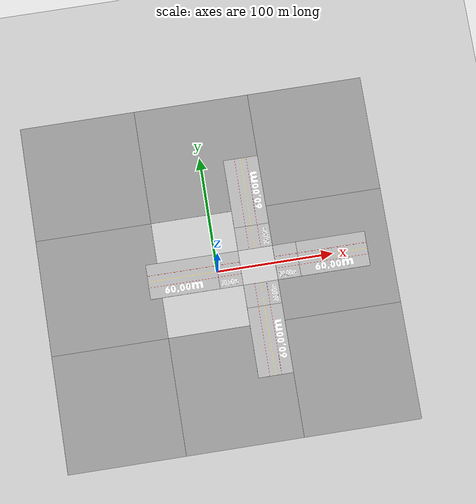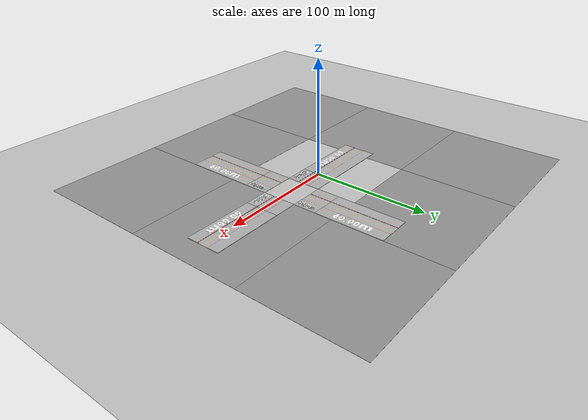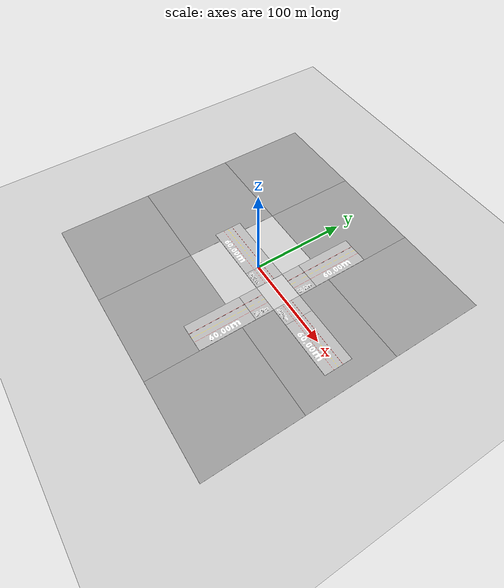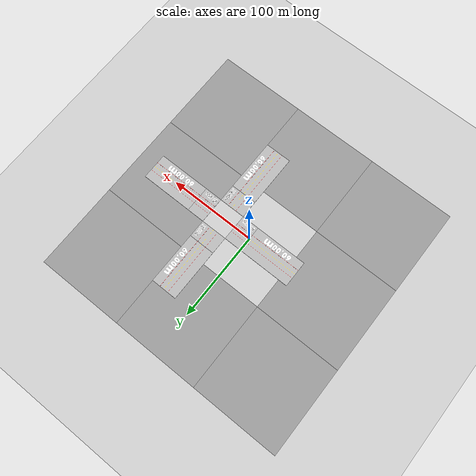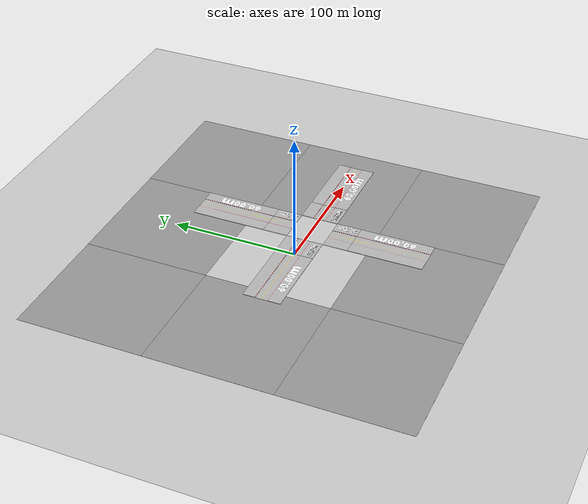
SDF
<sdf version="1.6">
 <world name="my_world">
  <light name="sun" type="directional">
   <pose>0 0 10 0 -0 0</pose>
   <diffuse>0.8 0.8 0.8 1</diffuse>
   <specular>0.2 0.2 0.2 1</specular>
   <attenuation>
    <range>1000</range>
    <constant>0.9</constant>
    <linear>0.01</linear>
    <quadratic>0.001</quadratic>
   </attenuation>
   <direction>-0.5 0.1 -0.9</direction>
  </light>
  <plugin name="ros_interface_plugin" filename="librotors_gazebo_ros_interface_plugin.so"/>
  <gravity>0 0 -9.8</gravity>
  <magnetic_field>6e-06 2.3e-05 -4.2e-05</magnetic_field>
  <atmosphere type="adiabatic"/>
  <physics name="default_physics" default="0" type="ode">
   <ode>
    <solver>
     <type>quick</type>
     <iters>500</iters>
     <sor>1.3</sor>
     <use_dynamic_moi_rescaling>0</use_dynamic_moi_rescaling>
    </solver>
    <constraints>
     <cfm>0</cfm>
     <erp>0.2</erp>
     <contact_max_correcting_vel>100</contact_max_correcting_vel>
     <contact_surface_layer>0.001</contact_surface_layer>
    </constraints>
   </ode>
   <max_step_size>0.01</max_step_size>
   <real_time_factor>1</real_time_factor>
   <real_time_update_rate>100</real_time_update_rate>
  </physics>
  <scene><ambient>0.4 0.4 0.4 1</ambient><background>0.7 0.7 0.7 1</background><shadows>1</shadows></scene>
  <spherical_coordinates>
   <surface_model>EARTH_WGS84</surface_model>
   <latitude_deg>0</latitude_deg>
   <longitude_deg>0</longitude_deg>
   <elevation>0</elevation>
   <heading_deg>0</heading_deg>
  </spherical_coordinates>
  <model name="ground_plane">
   <static>1</static>
   <link name="link">
    <collision name="collision">
     <geometry><plane><normal>0 0 1</normal><size>100 100</size></plane></geometry>
     <surface><friction><ode><mu>100</mu><mu2>50</mu2></ode></friction></surface>
    </collision>
    <visual name="visual">
     <cast_shadows>0</cast_shadows>
     <geometry><plane><normal>0 0 1</normal><size>100 100</size></plane></geometry>
     <material>
      <script><uri>file://media/materials/scripts/gazebo.material</uri><name>Gazebo/Grey</name></script>
     </material>
    </visual>
   </link>
  </model>
  <model name="recta20,00m">
   <static>1</static>
   <link name="recta20,00m_link">
    <collision name="recta20,00m_collision">
     <pose>5 10 0.1 0 -0 0</pose>
     <geometry><box><size>30 20 0.2</size></box></geometry>
    </collision>
    <visual name="recta20,00m_mesh">
     <geometry><mesh><uri>model://recta20,00m/meshes/recta20,00m.dae</uri></mesh></geometry>
    </visual>
   </link>
   <pose>0 5 0 0 0 -1.5708</pose>
  </model>
  <model name="recta20,00m_0">
   <static>1</static>
   <link name="recta20,00m_link">
    <collision name="recta20,00m_collision">
     <pose>5 10 0.1 0 -0 0</pose>
     <geometry><box><size>30 20 0.2</size></box></geometry>
    </collision>
    <visual name="recta20,00m_mesh">
     <cast_shadows>0</cast_shadows>
     <geometry><mesh><uri>model://recta20,00m/meshes/recta20,00m.dae</uri></mesh></geometry>
    </visual>
   </link>
   <pose>30 15 0 0 -0 0</pose>
  </model>
  <model name="recta20,00m_1">
   <static>1</static>
   <link name="recta20,00m_link">
    <collision name="recta20,00m_collision">
     <pose>5 10 0.1 0 -0 0</pose>
     <geometry><box><size>30 20 0.2</size></box></geometry>
    </collision>
    <visual name="recta20,00m_mesh">
     <cast_shadows>0</cast_shadows>
     <geometry><mesh><uri>model://recta20,00m/meshes/recta20,00m.dae</uri></mesh></geometry>
    </visual>
   </link>
   <pose>30 -35 0 0 -0 0</pose>
  </model>
  <model name="recta20,00m_2">
   <static>1</static>
   <link name="recta20,00m_link">
    <collision name="recta20,00m_collision">
     <pose>5 10 0.1 0 -0 0</pose>
     <geometry><box><size>30 20 0.2</size></box></geometry>
    </collision>
    <visual name="recta20,00m_mesh">
     <cast_shadows>0</cast_shadows>
     <geometry><mesh><uri>model://recta20,00m/meshes/recta20,00m.dae</uri></mesh></geometry>
    </visual>
   </link>
   <pose>50 5 0 0 0 -1.5708</pose>
  </model>
  <model name="rectasinpeaton60,00m">
   <static>1</static>
   <link name="rectasinpeaton60,00m_link">
    <collision name="rectasinpeaton60,00m_collision">
     <pose>15 30 0.1 0 -0 0</pose>
     <geometry><box><size>30 60 0.2</size></box></geometry>
    </collision>
    <visual name="rectasinpeaton60,00m_mesh">
     <cast_shadows>0</cast_shadows>
     <geometry><mesh><uri>model://rectasinpeaton60,00m/meshes/rectasinpeaton60,00m.dae</uri></mesh></geometry>
    </visual>
   </link>
   <pose>-60 15 0 0 0 -1.5708</pose>
  </model>
  <model name="rectasinpeaton60,00m_0">
   <static>1</static>
   <link name="rectasinpeaton60,00m_link">
    <collision name="rectasinpeaton60,00m_collision">
     <pose>15 30 0.1 0 -0 0</pose>
     <geometry><box><size>30 60 0.2</size></box></geometry>
    </collision>
    <visual name="rectasinpeaton60,00m_mesh">
     <cast_shadows>0</cast_shadows>
     <geometry><mesh><uri>model://rectasinpeaton60,00m/meshes/rectasinpeaton60,00m.dae</uri></mesh></geometry>
    </visual>
   </link>
   <pose>20 35 0 0 -0 0</pose>
  </model>
  <model name="rectasinpeaton60,00m_1">
   <static>1</static>
   <link name="rectasinpeaton60,00m_link">
    <collision name="rectasinpeaton60,00m_collision">
     <pose>15 30 0.1 0 -0 0</pose>
     <geometry><box><size>30 60 0.2</size></box></geometry>
    </collision>
    <visual name="rectasinpeaton60,00m_mesh">
     <cast_shadows>0</cast_shadows>
     <geometry><mesh><uri>model://rectasinpeaton60,00m/meshes/rectasinpeaton60,00m.dae</uri></mesh></geometry>
    </visual>
   </link>
   <pose>20 -95 0 0 -0 0</pose>
  </model>
  <model name="rectasinpeaton60,00m_2">
   <static>1</static>
   <link name="rectasinpeaton60,00m_link">
    <collision name="rectasinpeaton60,00m_collision">
     <pose>15 30 0.1 0 -0 0</pose>
     <geometry><box><size>30 60 0.2</size></box></geometry>
    </collision>
    <visual name="rectasinpeaton60,00m_mesh">
     <cast_shadows>0</cast_shadows>
     <geometry><mesh><uri>model://rectasinpeaton60,00m/meshes/rectasinpeaton60,00m.dae</uri></mesh></geometry>
    </visual>
   </link>
   <pose>70 15 0 0 0 -1.5708</pose>
  </model>
  <model name="ground_plane_0">
   <static>1</static>
   <link name="link">
    <collision name="collision">
     <geometry><plane><normal>0 0 1</normal><size>100 100</size></plane></geometry>
     <surface><friction><ode><mu>100</mu><mu2>50</mu2></ode></friction></surface>
    </collision>
    <visual name="visual">
     <cast_shadows>0</cast_shadows>
     <geometry><plane><normal>0 0 1</normal><size>100 100</size></plane></geometry>
     <material>
      <script><uri>file://media/materials/scripts/gazebo.material</uri><name>Gazebo/Grey</name></script>
     </material>
    </visual>
   </link>
   <pose>100 0 0 0 -0 0</pose>
  </model>
  <model name="ground_plane_1">
   <static>1</static>
   <link name="link">
    <collision name="collision">
     <geometry><plane><normal>0 0 1</normal><size>100 100</size></plane></geometry>
     <surface><friction><ode><mu>100</mu><mu2>50</mu2></ode></friction></surface>
    </collision>
    <visual name="visual">
     <cast_shadows>0</cast_shadows>
     <geometry><plane><normal>0 0 1</normal><size>100 100</size></plane></geometry>
     <material>
      <script><uri>file://media/materials/scripts/gazebo.material</uri><name>Gazebo/Grey</name></script>
     </material>
    </visual>
   </link>
   <pose>-100 0 0 0 -0 0</pose>
  </model>
  <model name="ground_plane_2">
   <static>1</static>
   <link name="link">
    <collision name="collision">
     <geometry><plane><normal>0 0 1</normal><size>100 100</size></plane></geometry>
     <surface><friction><ode><mu>100</mu><mu2>50</mu2></ode></friction></surface>
    </collision>
    <visual name="visual">
     <cast_shadows>0</cast_shadows>
     <geometry><plane><normal>0 0 1</normal><size>100 100</size></plane></geometry>
     <material>
      <script><uri>file://media/materials/scripts/gazebo.material</uri><name>Gazebo/Grey</name></script>
     </material>
    </visual>
   </link>
   <pose>100 -100 0 0 -0 0</pose>
  </model>
  <model name="ground_plane_3">
   <static>1</static>
   <link name="link">
    <collision name="collision">
     <geometry><plane><normal>0 0 1</normal><size>100 100</size></plane></geometry>
     <surface><friction><ode><mu>100</mu><mu2>50</mu2></ode></friction></surface>
    </collision>
    <visual name="visual">
     <cast_shadows>0</cast_shadows>
     <geometry><plane><normal>0 0 1</normal><size>100 100</size></plane></geometry>
     <material>
      <script><uri>file://media/materials/scripts/gazebo.material</uri><name>Gazebo/Grey</name></script>
     </material>
    </visual>
   </link>
   <pose>0 -100 0 0 -0 0</pose>
  </model>
  <model name="ground_plane_4">
   <static>1</static>
   <link name="link">
    <collision name="collision">
     <geometry><plane><normal>0 0 1</normal><size>100 100</size></plane></geometry>
     <surface><friction><ode><mu>100</mu><mu2>50</mu2></ode></friction></surface>
    </collision>
    <visual name="visual">
     <cast_shadows>0</cast_shadows>
     <geometry><plane><normal>0 0 1</normal><size>100 100</size></plane></geometry>
     <material>
      <script><uri>file://media/materials/scripts/gazebo.material</uri><name>Gazebo/Grey</name></script>
     </material>
    </visual>
   </link>
   <pose>100 100 0 0 -0 0</pose>
  </model>
  <model name="ground_plane_5">
   <static>1</static>
   <link name="link">
    <collision name="collision">
     <geometry><plane><normal>0 0 1</normal><size>100 100</size></plane></geometry>
     <surface><friction><ode><mu>100</mu><mu2>50</mu2></ode></friction></surface>
    </collision>
    <visual name="visual">
     <cast_shadows>0</cast_shadows>
     <geometry><plane><normal>0 0 1</normal><size>100 100</size></plane></geometry>
     <material>
      <script><uri>file://media/materials/scripts/gazebo.material</uri><name>Gazebo/Grey</name></script>
     </material>
    </visual>
   </link>
   <pose>0 100 0 0 -0 0</pose>
  </model>
  <model name="ground_plane_6">
   <static>1</static>
   <link name="link">
    <collision name="collision">
     <geometry><plane><normal>0 0 1</normal><size>100 100</size></plane></geometry>
     <surface><friction><ode><mu>100</mu><mu2>50</mu2></ode></friction></surface>
    </collision>
    <visual name="visual">
     <cast_shadows>0</cast_shadows>
     <geometry><plane><normal>0 0 1</normal><size>100 100</size></plane></geometry>
     <material>
      <script><uri>file://media/materials/scripts/gazebo.material</uri><name>Gazebo/Grey</name></script>
     </material>
    </visual>
   </link>
   <pose>-100 -100 0 0 -0 0</pose>
  </model>
  <model name="ground_plane_7">
   <static>1</static>
   <link name="link">
    <collision name="collision">
     <geometry><plane><normal>0 0 1</normal><size>100 100</size></plane></geometry>
     <surface><friction><ode><mu>100</mu><mu2>50</mu2></ode></friction></surface>
    </collision>
    <visual name="visual">
     <cast_shadows>0</cast_shadows>
     <geometry><plane><normal>0 0 1</normal><size>100 100</size></plane></geometry>
     <material>
      <script><uri>file://media/materials/scripts/gazebo.material</uri><name>Gazebo/Grey</name></script>
     </material>
    </visual>
   </link>
   <pose>-100 100 0 0 -0 0</pose>
  </model>
 </world>
</sdf>
